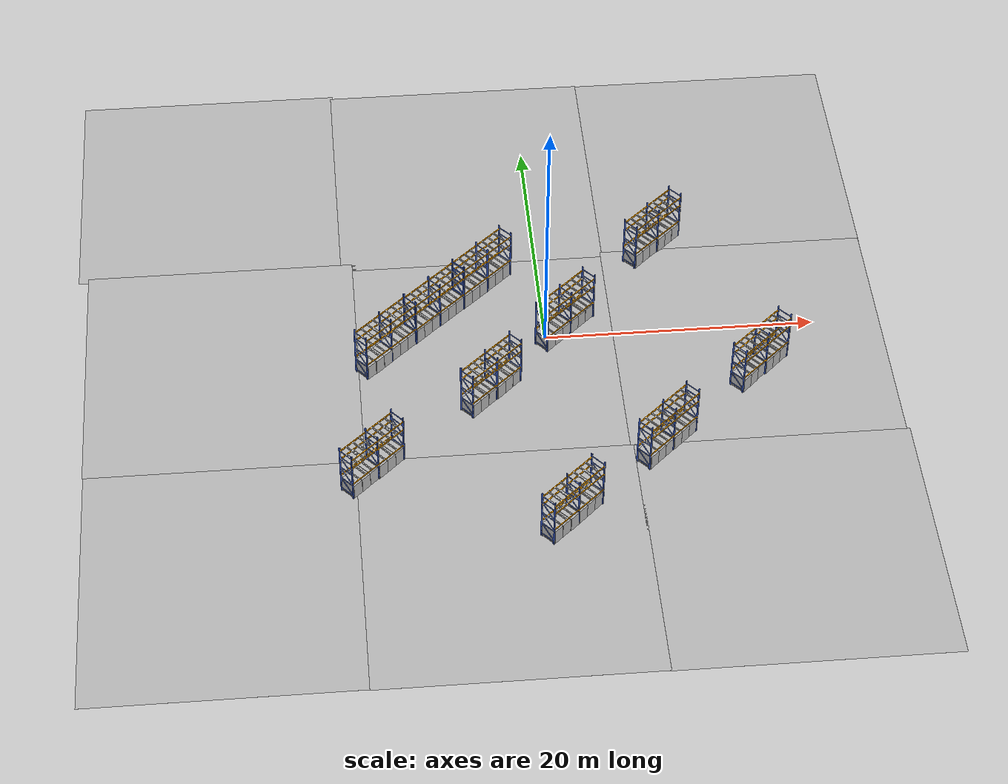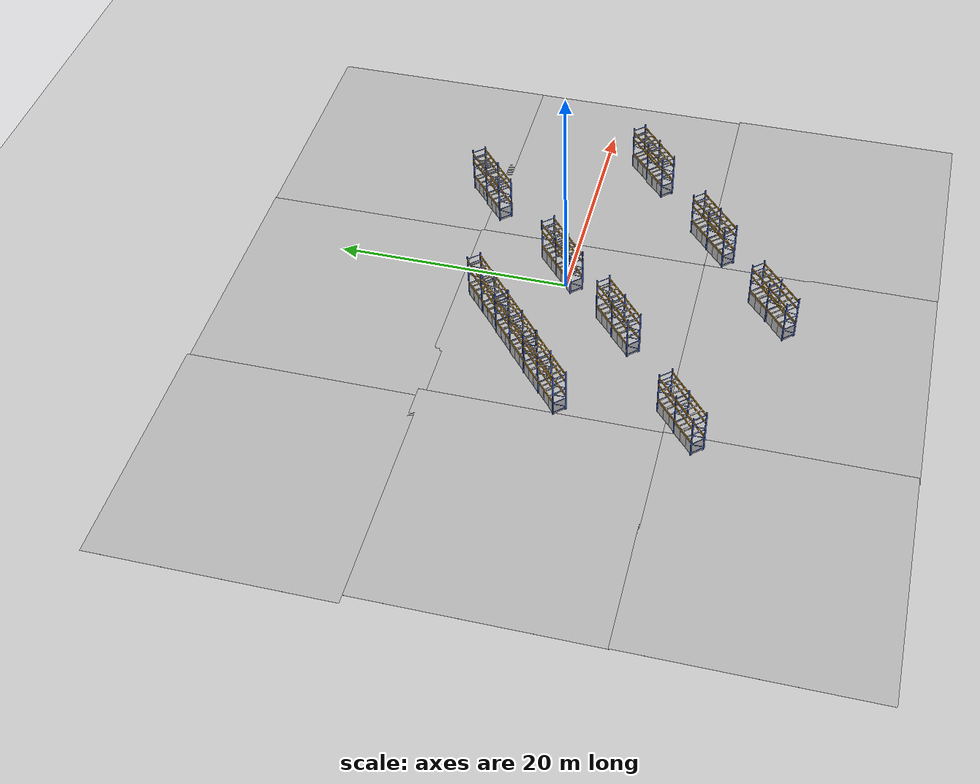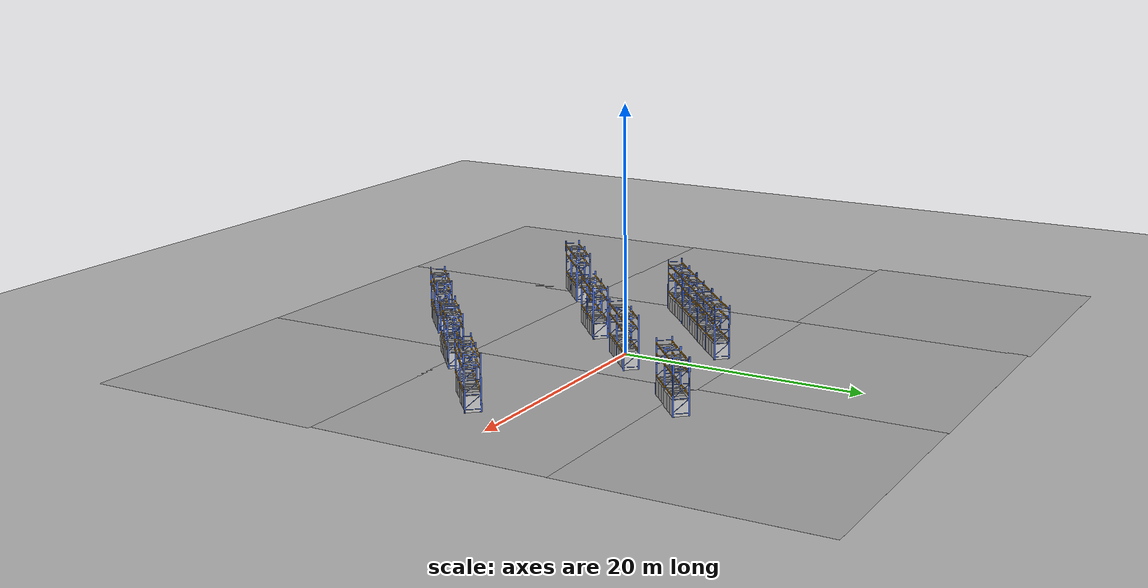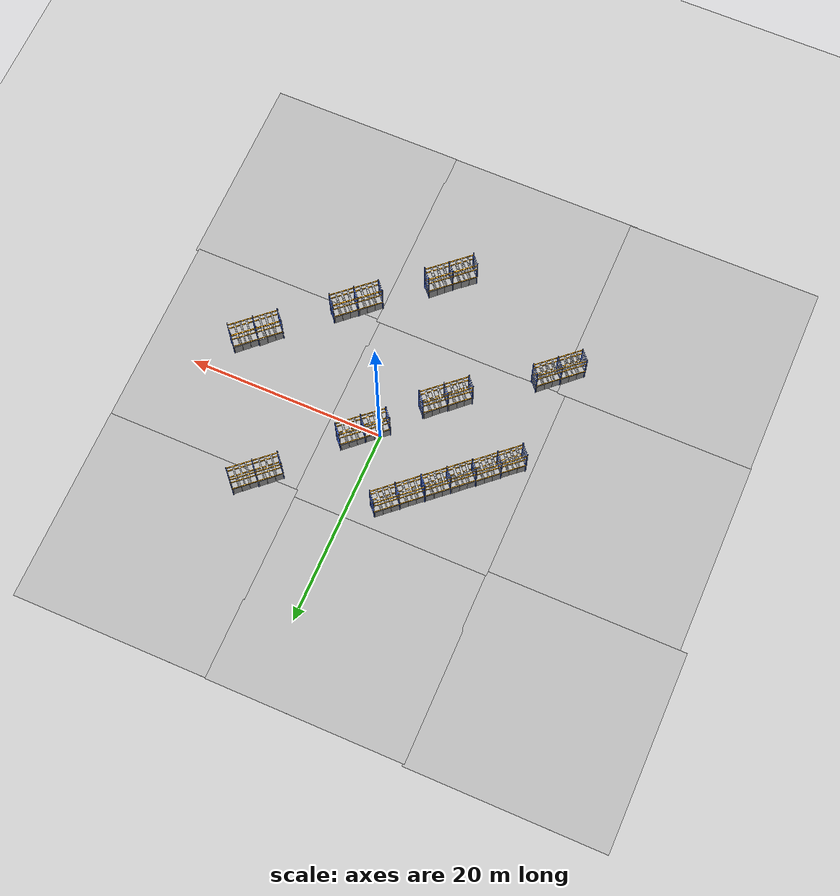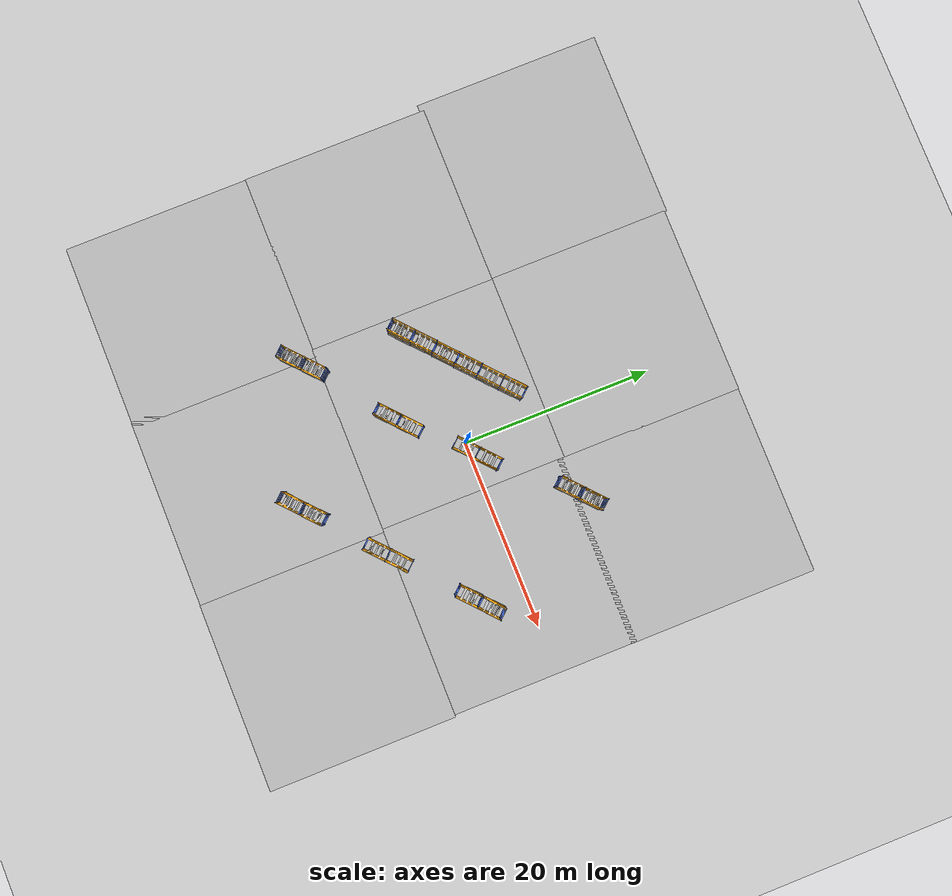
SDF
<sdf version="1.6">
 <world name="default">
  <light name="sun" type="directional">
   <pose>0 0 10 0 -0 0</pose>
   <diffuse>0.8 0.8 0.8 1</diffuse>
   <specular>0.2 0.2 0.2 1</specular>
   <attenuation>
    <range>1000</range>
    <constant>0.9</constant>
    <linear>0.01</linear>
    <quadratic>0.001</quadratic>
   </attenuation>
   <direction>-0.5 0.1 -0.9</direction>
  </light>
  <model name="ground_plane">
   <static>1</static>
   <link name="link">
    <collision name="collision">
     <geometry><plane><normal>0 0 1</normal><size>100 100</size></plane></geometry>
     <surface><friction><ode><mu>100</mu><mu2>50</mu2></ode></friction></surface>
    </collision>
    <visual name="visual">
     <cast_shadows>0</cast_shadows>
     <geometry><plane><normal>0 0 1</normal><size>100 100</size></plane></geometry>
     <material>
      <script><uri>file://media/materials/scripts/gazebo.material</uri><name>Gazebo/Grey</name></script>
     </material>
    </visual>
   </link>
  </model>
  <gravity>0 0 -9.8</gravity>
  <magnetic_field>6e-06 2.3e-05 -4.2e-05</magnetic_field>
  <atmosphere type="adiabatic"/>
  <physics name="default_physics" default="0" type="ode">
   <max_step_size>0.001</max_step_size>
   <real_time_factor>1</real_time_factor>
   <real_time_update_rate>1000</real_time_update_rate>
   <max_contacts>1000</max_contacts>
  </physics>
  <scene><ambient>0.4 0.4 0.4 1</ambient><background>0.7 0.7 0.7 1</background><shadows>1</shadows></scene>
  <spherical_coordinates>
   <surface_model>EARTH_WGS84</surface_model>
   <latitude_deg>0</latitude_deg>
   <longitude_deg>0</longitude_deg>
   <elevation>0</elevation>
   <heading_deg>0</heading_deg>
  </spherical_coordinates>
  <model name="Shelves high">
   <static>1</static>
   <link name="link">
    <collision name="collision">
     <geometry>
      <mesh><uri>model://shelves_high/meshes/shelves_high_collision.dae</uri><scale>1 1.2 1.2</scale></mesh>
     </geometry>
    </collision>
    <visual name="visual">
     <geometry>
      <mesh><uri>model://shelves_high/meshes/shelves_high.dae</uri><scale>1 1.2 1.2</scale></mesh>
     </geometry>
    </visual>
   </link>
   <pose>-4.9 -5 0 0 -0 0.726737</pose>
  </model>
  <model name="Shelves high_clone">
   <static>1</static>
   <link name="link">
    <collision name="collision">
     <geometry>
      <mesh><uri>model://shelves_high/meshes/shelves_high_collision.dae</uri><scale>1 1.2 1.2</scale></mesh>
     </geometry>
    </collision>
    <visual name="visual">
     <geometry>
      <mesh><uri>model://shelves_high/meshes/shelves_high.dae</uri><scale>1 1.2 1.2</scale></mesh>
     </geometry>
    </visual>
   </link>
   <pose>1.08284 1.1362 0 0 -0 0.726737</pose>
  </model>
  <model name="Shelves high_clone_clone">
   <static>1</static>
   <link name="link">
    <collision name="collision">
     <geometry>
      <mesh><uri>model://shelves_high/meshes/shelves_high_collision.dae</uri><scale>1 1.2 1.2</scale></mesh>
     </geometry>
    </collision>
    <visual name="visual">
     <geometry>
      <mesh><uri>model://shelves_high/meshes/shelves_high.dae</uri><scale>1 1.2 1.2</scale></mesh>
     </geometry>
    </visual>
   </link>
   <pose>-4.68105 6.07814 0 0 -0 0.726737</pose>
  </model>
  <model name="Shelves high_clone_clone_0">
   <static>1</static>
   <link name="link">
    <collision name="collision">
     <geometry>
      <mesh><uri>model://shelves_high/meshes/shelves_high_collision.dae</uri><scale>1 1.2 1.2</scale></mesh>
     </geometry>
    </collision>
    <visual name="visual">
     <geometry>
      <mesh><uri>model://shelves_high/meshes/shelves_high.dae</uri><scale>1 1.2 1.2</scale></mesh>
     </geometry>
    </visual>
   </link>
   <pose>-8.4809 2.70667 0 0 -0 0.726737</pose>
  </model>
  <model name="Shelves high_clone_clone_0_clone">
   <static>1</static>
   <link name="link">
    <collision name="collision">
     <geometry>
      <mesh><uri>model://shelves_high/meshes/shelves_high_collision.dae</uri><scale>1 1.2 1.2</scale></mesh>
     </geometry>
    </collision>
    <visual name="visual">
     <geometry>
      <mesh><uri>model://shelves_high/meshes/shelves_high.dae</uri><scale>1 1.2 1.2</scale></mesh>
     </geometry>
    </visual>
   </link>
   <pose>-12.2757 -0.591633 0 0 -0 0.726737</pose>
  </model>
  <model name="Floor_room">
   <link name="main">
    <pose>0 0 0.01 0 -0 0</pose>
    <collision name="main_Collision"><geometry><box><size>20 20 0.001</size></box></geometry></collision>
    <visual name="main_Visual">
     <geometry><box><size>20 20 0.001</size></box></geometry>
     <material>
      <script>
       <uri>model://Floor_room/materials/scripts</uri>
       <uri>model://Floor_room/materials/textures</uri>
       <name>floor_room</name>
      </script>
     </material>
    </visual>
   </link>
   <static>1</static>
   <pose>-4.76301 -1.10114 0 0 -0 0</pose>
  </model>
  <model name="Shelves high_clone_clone_1">
   <static>1</static>
   <link name="link">
    <collision name="collision">
     <geometry>
      <mesh><uri>model://shelves_high/meshes/shelves_high_collision.dae</uri><scale>1 1.2 1.2</scale></mesh>
     </geometry>
    </collision>
    <visual name="visual">
     <geometry>
      <mesh><uri>model://shelves_high/meshes/shelves_high.dae</uri><scale>1 1.2 1.2</scale></mesh>
     </geometry>
    </visual>
   </link>
   <pose>-13.8443 -11.8964 0 0 -0 0.726737</pose>
  </model>
  <model name="Shelves high_clone_clone_2">
   <static>1</static>
   <link name="link">
    <collision name="collision">
     <geometry>
      <mesh><uri>model://shelves_high/meshes/shelves_high_collision.dae</uri><scale>1 1.2 1.2</scale></mesh>
     </geometry>
    </collision>
    <visual name="visual">
     <geometry>
      <mesh><uri>model://shelves_high/meshes/shelves_high.dae</uri><scale>1 1.2 1.2</scale></mesh>
     </geometry>
    </visual>
   </link>
   <pose>8.58263 9.30039 0 0 -0 0.726737</pose>
  </model>
  <model name="Shelves high_clone_clone_2_clone">
   <static>1</static>
   <link name="link">
    <collision name="collision">
     <geometry>
      <mesh><uri>model://shelves_high/meshes/shelves_high_collision.dae</uri><scale>1 1.2 1.2</scale></mesh>
     </geometry>
    </collision>
    <visual name="visual">
     <geometry>
      <mesh><uri>model://shelves_high/meshes/shelves_high.dae</uri><scale>1 1.2 1.2</scale></mesh>
     </geometry>
    </visual>
   </link>
   <pose>7.19061 -10.888 0 0 -0 0.726737</pose>
  </model>
  <model name="Floor_room_0">
   <link name="main">
    <pose>0 0 0.01 0 -0 0</pose>
    <collision name="main_Collision"><geometry><box><size>20 20 0.001</size></box></geometry></collision>
    <visual name="main_Visual">
     <geometry><box><size>20 20 0.001</size></box></geometry>
     <material>
      <script>
       <uri>model://Floor_room/materials/scripts</uri>
       <uri>model://Floor_room/materials/textures</uri>
       <name>floor_room</name>
      </script>
     </material>
    </visual>
   </link>
   <static>1</static>
   <pose>-4.62785 -21.0624 0 0 -0 0</pose>
  </model>
  <model name="Floor_room_0_clone">
   <link name="main">
    <pose>0 0 0.01 0 -0 0</pose>
    <collision name="main_Collision"><geometry><box><size>20 20 0.001</size></box></geometry></collision>
    <visual name="main_Visual">
     <geometry><box><size>20 20 0.001</size></box></geometry>
     <material>
      <script>
       <uri>model://Floor_room/materials/scripts</uri>
       <uri>model://Floor_room/materials/textures</uri>
       <name>floor_room</name>
      </script>
     </material>
    </visual>
   </link>
   <static>1</static>
   <pose>15.2569 -21.1005 0 0 -0 0</pose>
  </model>
  <model name="Floor_room_0_clone_0">
   <link name="main">
    <pose>0 0 0.01 0 -0 0</pose>
    <collision name="main_Collision"><geometry><box><size>20 20 0.001</size></box></geometry></collision>
    <visual name="main_Visual">
     <geometry><box><size>20 20 0.001</size></box></geometry>
     <material>
      <script>
       <uri>model://Floor_room/materials/scripts</uri>
       <uri>model://Floor_room/materials/textures</uri>
       <name>floor_room</name>
      </script>
     </material>
    </visual>
   </link>
   <static>1</static>
   <pose>15.0288 -1.3267 0 0 -0 0</pose>
  </model>
  <model name="Floor_room_0_clone_1">
   <link name="main">
    <pose>0 0 0.01 0 -0 0</pose>
    <collision name="main_Collision"><geometry><box><size>20 20 0.001</size></box></geometry></collision>
    <visual name="main_Visual">
     <geometry><box><size>20 20 0.001</size></box></geometry>
     <material>
      <script>
       <uri>model://Floor_room/materials/scripts</uri>
       <uri>model://Floor_room/materials/textures</uri>
       <name>floor_room</name>
      </script>
     </material>
    </visual>
   </link>
   <static>1</static>
   <pose>15.0504 18.1386 0 0 -0 0</pose>
  </model>
  <model name="Floor_room_0_clone_2">
   <link name="main">
    <pose>0 0 0.01 0 -0 0</pose>
    <collision name="main_Collision"><geometry><box><size>20 20 0.001</size></box></geometry></collision>
    <visual name="main_Visual">
     <geometry><box><size>20 20 0.001</size></box></geometry>
     <material>
      <script>
       <uri>model://Floor_room/materials/scripts</uri>
       <uri>model://Floor_room/materials/textures</uri>
       <name>floor_room</name>
      </script>
     </material>
    </visual>
   </link>
   <static>1</static>
   <pose>-4.83743 18.2019 0 0 -0 0</pose>
  </model>
  <model name="Shelves high_clone_clone_1_clone_clone">
   <static>1</static>
   <link name="link">
    <collision name="collision">
     <geometry>
      <mesh><uri>model://shelves_high/meshes/shelves_high_collision.dae</uri><scale>1 1.2 1.2</scale></mesh>
     </geometry>
    </collision>
    <visual name="visual">
     <geometry>
      <mesh><uri>model://shelves_high/meshes/shelves_high.dae</uri><scale>1 1.2 1.2</scale></mesh>
     </geometry>
    </visual>
   </link>
   <pose>14.8688 -4.07905 0 0 -0 0.726737</pose>
  </model>
  <model name="Floor_room_0_clone_3">
   <link name="main">
    <pose>0 0 0.01 0 -0 0</pose>
    <collision name="main_Collision"><geometry><box><size>20 20 0.001</size></box></geometry></collision>
    <visual name="main_Visual">
     <geometry><box><size>20 20 0.001</size></box></geometry>
     <material>
      <script>
       <uri>model://Floor_room/materials/scripts</uri>
       <uri>model://Floor_room/materials/textures</uri>
       <name>floor_room</name>
      </script>
     </material>
    </visual>
   </link>
   <static>1</static>
   <pose>-23.9194 -21.0125 0 0 -0 0</pose>
  </model>
  <model name="Floor_room_0_clone_4">
   <link name="main">
    <pose>0 0 0.01 0 -0 0</pose>
    <collision name="main_Collision"><geometry><box><size>20 20 0.001</size></box></geometry></collision>
    <visual name="main_Visual">
     <geometry><box><size>20 20 0.001</size></box></geometry>
     <material>
      <script>
       <uri>model://Floor_room/materials/scripts</uri>
       <uri>model://Floor_room/materials/textures</uri>
       <name>floor_room</name>
      </script>
     </material>
    </visual>
   </link>
   <static>1</static>
   <pose>-23.9755 -1.11735 0 0 -0 0</pose>
  </model>
  <model name="Floor_room_0_clone_5">
   <link name="main">
    <pose>0 0 0.01 0 -0 0</pose>
    <collision name="main_Collision"><geometry><box><size>20 20 0.001</size></box></geometry></collision>
    <visual name="main_Visual">
     <geometry><box><size>20 20 0.001</size></box></geometry>
     <material>
      <script>
       <uri>model://Floor_room/materials/scripts</uri>
       <uri>model://Floor_room/materials/textures</uri>
       <name>floor_room</name>
      </script>
     </material>
    </visual>
   </link>
   <static>1</static>
   <pose>-24.6874 18.4261 0 0 -0 0</pose>
  </model>
  <model name="Shelves high_clone_clone_1_clone_clone_0">
   <static>1</static>
   <link name="link">
    <collision name="collision">
     <geometry>
      <mesh><uri>model://shelves_high/meshes/shelves_high_collision.dae</uri><scale>1 1.2 1.2</scale></mesh>
     </geometry>
    </collision>
    <visual name="visual">
     <geometry>
      <mesh><uri>model://shelves_high/meshes/shelves_high.dae</uri><scale>1 1.2 1.2</scale></mesh>
     </geometry>
    </visual>
   </link>
   <pose>-0.243727 -17.1373 0 0 -0 0.726737</pose>
  </model>
  <model name="Big box 4_clone_1_clone_clone_3_clone_clone_1">
   <pose>9.15129 -9.98772 0.63539 -0.000981 -0.000832 -0.826064</pose>
   <static>0</static>
   <link name="link">
    <inertial>
     <mass>40</mass>
     <inertia><ixx>1</ixx><ixy>0</ixy><ixz>0</ixz><iyy>1</iyy><iyz>0</iyz><izz>1</izz></inertia>
    </inertial>
    <collision name="collision">
     <geometry><box><size>1.2 0.8 1.25</size></box></geometry>
     <surface><contact><ode><max_vel>0.1</max_vel><min_depth>0.001</min_depth></ode></contact></surface>
    </collision>
    <visual name="visual">
     <geometry><mesh><uri>model://big_box4/meshes/big_box.dae</uri></mesh></geometry>
    </visual>
   </link>
  </model>
  <model name="Big box 4_clone_1_clone_clone_3_clone_clone_1_clone">
   <pose>7.25854 -11.6862 0.635464 -2.7e-05 -1.5e-05 -0.815496</pose>
   <static>0</static>
   <link name="link">
    <inertial>
     <mass>40</mass>
     <inertia><ixx>1</ixx><ixy>0</ixy><ixz>0</ixz><iyy>1</iyy><iyz>0</iyz><izz>1</izz></inertia>
    </inertial>
    <collision name="collision">
     <geometry><box><size>1.2 0.8 1.25</size></box></geometry>
     <surface><contact><ode><max_vel>0.1</max_vel><min_depth>0.001</min_depth></ode></contact></surface>
    </collision>
    <visual name="visual">
     <geometry><mesh><uri>model://big_box4/meshes/big_box.dae</uri></mesh></geometry>
    </visual>
   </link>
  </model>
  <model name="Big box 4_clone_1_clone_clone_3_clone_clone_1_clone_0">
   <pose>6.67276 -12.2304 0.635223 0.000765 -5.1e-05 -0.815316</pose>
   <static>0</static>
   <link name="link">
    <inertial>
     <mass>40</mass>
     <inertia><ixx>1</ixx><ixy>0</ixy><ixz>0</ixz><iyy>1</iyy><iyz>0</iyz><izz>1</izz></inertia>
    </inertial>
    <collision name="collision">
     <geometry><box><size>1.2 0.8 1.25</size></box></geometry>
     <surface><contact><ode><max_vel>0.1</max_vel><min_depth>0.001</min_depth></ode></contact></surface>
    </collision>
    <visual name="visual">
     <geometry><mesh><uri>model://big_box4/meshes/big_box.dae</uri></mesh></geometry>
    </visual>
   </link>
  </model>
  <model name="Big box 4_clone_1_clone_clone_3_clone_clone_1_clone_0_clone">
   <pose>6.08846 -12.7777 0.63538 -0.00014 -0.000237 -0.815193</pose>
   <static>0</static>
   <link name="link">
    <inertial>
     <mass>40</mass>
     <inertia><ixx>1</ixx><ixy>0</ixy><ixz>0</ixz><iyy>1</iyy><iyz>0</iyz><izz>1</izz></inertia>
    </inertial>
    <collision name="collision">
     <geometry><box><size>1.2 0.8 1.25</size></box></geometry>
     <surface><contact><ode><max_vel>0.1</max_vel><min_depth>0.001</min_depth></ode></contact></surface>
    </collision>
    <visual name="visual">
     <geometry><mesh><uri>model://big_box4/meshes/big_box.dae</uri></mesh></geometry>
    </visual>
   </link>
  </model>
  <model name="Big box 4_clone_1_clone_clone_3_clone_clone_1_clone_0_clone_1">
   <pose>8.56172 -10.531 0.635082 -0.000196 -0.000827 -0.822312</pose>
   <static>0</static>
   <link name="link">
    <inertial>
     <mass>40</mass>
     <inertia><ixx>1</ixx><ixy>0</ixy><ixz>0</ixz><iyy>1</iyy><iyz>0</iyz><izz>1</izz></inertia>
    </inertial>
    <collision name="collision">
     <geometry><box><size>1.2 0.8 1.25</size></box></geometry>
     <surface><contact><ode><max_vel>0.1</max_vel><min_depth>0.001</min_depth></ode></contact></surface>
    </collision>
    <visual name="visual">
     <geometry><mesh><uri>model://big_box4/meshes/big_box.dae</uri></mesh></geometry>
    </visual>
   </link>
  </model>
  <model name="Big box 4_clone_1_clone_clone_3_clone_clone_1_clone_0_clone_0">
   <pose>7.97165 -11.0705 0.635079 -0.000198 -0.000834 -0.823147</pose>
   <static>0</static>
   <link name="link">
    <inertial>
     <mass>40</mass>
     <inertia><ixx>1</ixx><ixy>0</ixy><ixz>0</ixz><iyy>1</iyy><iyz>0</iyz><izz>1</izz></inertia>
    </inertial>
    <collision name="collision">
     <geometry><box><size>1.2 0.8 1.25</size></box></geometry>
     <surface><contact><ode><max_vel>0.1</max_vel><min_depth>0.001</min_depth></ode></contact></surface>
    </collision>
    <visual name="visual">
     <geometry><mesh><uri>model://big_box4/meshes/big_box.dae</uri></mesh></geometry>
    </visual>
   </link>
  </model>
  <model name="Big box 4_clone_1_clone_clone_3_clone_clone_1_clone_0_clone_clone_3_clone_0">
   <pose>-14.9655 -13.7703 0.635484 -0.001251 0.000808 -0.822952</pose>
   <static>0</static>
   <link name="link">
    <inertial>
     <mass>40</mass>
     <inertia><ixx>1</ixx><ixy>0</ixy><ixz>0</ixz><iyy>1</iyy><iyz>0</iyz><izz>1</izz></inertia>
    </inertial>
    <collision name="collision">
     <geometry><box><size>1.2 0.8 1.25</size></box></geometry>
     <surface><contact><ode><max_vel>0.1</max_vel><min_depth>0.001</min_depth></ode></contact></surface>
    </collision>
    <visual name="visual">
     <geometry><mesh><uri>model://big_box4/meshes/big_box.dae</uri></mesh></geometry>
    </visual>
   </link>
  </model>
  <model name="Big box 4_clone_1_clone_clone_3_clone_clone_1_clone_0_clone_clone_3_clone_2">
   <pose>-13.7802 -12.6601 0.634999 -4e-06 -0.00083 -0.815678</pose>
   <static>0</static>
   <link name="link">
    <inertial>
     <mass>40</mass>
     <inertia><ixx>1</ixx><ixy>0</ixy><ixz>0</ixz><iyy>1</iyy><iyz>0</iyz><izz>1</izz></inertia>
    </inertial>
    <collision name="collision">
     <geometry><box><size>1.2 0.8 1.25</size></box></geometry>
     <surface><contact><ode><max_vel>0.1</max_vel><min_depth>0.001</min_depth></ode></contact></surface>
    </collision>
    <visual name="visual">
     <geometry><mesh><uri>model://big_box4/meshes/big_box.dae</uri></mesh></geometry>
    </visual>
   </link>
  </model>
  <model name="Big box 4_clone_1_clone_clone_3_clone_clone_1_clone_0_clone_clone_3_clone_3">
   <pose>-13.0795 -12.0943 0.635015 0.001245 2.9e-05 -0.825603</pose>
   <static>0</static>
   <link name="link">
    <inertial>
     <mass>40</mass>
     <inertia><ixx>1</ixx><ixy>0</ixy><ixz>0</ixz><iyy>1</iyy><iyz>0</iyz><izz>1</izz></inertia>
    </inertial>
    <collision name="collision">
     <geometry><box><size>1.2 0.8 1.25</size></box></geometry>
     <surface><contact><ode><max_vel>0.1</max_vel><min_depth>0.001</min_depth></ode></contact></surface>
    </collision>
    <visual name="visual">
     <geometry><mesh><uri>model://big_box4/meshes/big_box.dae</uri></mesh></geometry>
    </visual>
   </link>
  </model>
  <model name="Big box 4_clone_1_clone_clone_3_clone_clone_1_clone_0_clone_clone_3_clone_5">
   <pose>-12.4895 -11.5448 0.635491 -1.5e-05 1e-06 -0.814935</pose>
   <static>0</static>
   <link name="link">
    <inertial>
     <mass>40</mass>
     <inertia><ixx>1</ixx><ixy>0</ixy><ixz>0</ixz><iyy>1</iyy><iyz>0</iyz><izz>1</izz></inertia>
    </inertial>
    <collision name="collision">
     <geometry><box><size>1.2 0.8 1.25</size></box></geometry>
     <surface><contact><ode><max_vel>0.1</max_vel><min_depth>0.001</min_depth></ode></contact></surface>
    </collision>
    <visual name="visual">
     <geometry><mesh><uri>model://big_box4/meshes/big_box.dae</uri></mesh></geometry>
    </visual>
   </link>
  </model>
  <model name="Big box 4_clone_1_clone_clone_3_clone_clone_1_clone_0_clone_clone_3_clone_4">
   <pose>-11.9042 -10.9927 0.635115 -0.000607 0.00062 -0.815722</pose>
   <static>0</static>
   <link name="link">
    <inertial>
     <mass>40</mass>
     <inertia><ixx>1</ixx><ixy>0</ixy><ixz>0</ixz><iyy>1</iyy><iyz>0</iyz><izz>1</izz></inertia>
    </inertial>
    <collision name="collision">
     <geometry><box><size>1.2 0.8 1.25</size></box></geometry>
     <surface><contact><ode><max_vel>0.1</max_vel><min_depth>0.001</min_depth></ode></contact></surface>
    </collision>
    <visual name="visual">
     <geometry><mesh><uri>model://big_box4/meshes/big_box.dae</uri></mesh></geometry>
    </visual>
   </link>
  </model>
  <model name="Big box 4_clone_1_clone_clone_3_clone_clone_1_clone_0_clone_clone_3_clone_1">
   <pose>-14.3695 -13.2241 0.635492 1.9e-05 -0 -0.815638</pose>
   <static>0</static>
   <link name="link">
    <inertial>
     <mass>40</mass>
     <inertia><ixx>1</ixx><ixy>0</ixy><ixz>0</ixz><iyy>1</iyy><iyz>0</iyz><izz>1</izz></inertia>
    </inertial>
    <collision name="collision">
     <geometry><box><size>1.2 0.8 1.25</size></box></geometry>
     <surface><contact><ode><max_vel>0.1</max_vel><min_depth>0.001</min_depth></ode></contact></surface>
    </collision>
    <visual name="visual">
     <geometry><mesh><uri>model://big_box4/meshes/big_box.dae</uri></mesh></geometry>
    </visual>
   </link>
  </model>
  <model name="Big box 4_clone_1_clone_clone_3_clone_clone_1_clone_0_clone_clone_3_clone_6">
   <pose>0.520862 -17.3367 0.635477 0.000446 0.000301 -0.825937</pose>
   <static>0</static>
   <link name="link">
    <inertial>
     <mass>40</mass>
     <inertia><ixx>1</ixx><ixy>0</ixy><ixz>0</ixz><iyy>1</iyy><iyz>0</iyz><izz>1</izz></inertia>
    </inertial>
    <collision name="collision">
     <geometry><box><size>1.2 0.8 1.25</size></box></geometry>
     <surface><contact><ode><max_vel>0.1</max_vel><min_depth>0.001</min_depth></ode></contact></surface>
    </collision>
    <visual name="visual">
     <geometry><mesh><uri>model://big_box4/meshes/big_box.dae</uri></mesh></geometry>
    </visual>
   </link>
  </model>
  <model name="Big box 4_clone_1_clone_clone_3_clone_clone_1_clone_0_clone_clone_3_clone_8">
   <pose>1.10652 -16.7834 0.634985 7e-06 -0.000805 -0.816273</pose>
   <static>0</static>
   <link name="link">
    <inertial>
     <mass>40</mass>
     <inertia><ixx>1</ixx><ixy>0</ixy><ixz>0</ixz><iyy>1</iyy><iyz>0</iyz><izz>1</izz></inertia>
    </inertial>
    <collision name="collision">
     <geometry><box><size>1.2 0.8 1.25</size></box></geometry>
     <surface><contact><ode><max_vel>0.1</max_vel><min_depth>0.001</min_depth></ode></contact></surface>
    </collision>
    <visual name="visual">
     <geometry><mesh><uri>model://big_box4/meshes/big_box.dae</uri></mesh></geometry>
    </visual>
   </link>
  </model>
  <model name="Big box 4_clone_1_clone_clone_3_clone_clone_1_clone_0_clone_clone_3_clone_7">
   <pose>1.69106 -16.2278 0.634995 1.7e-05 -0.000815 -0.815976</pose>
   <static>0</static>
   <link name="link">
    <inertial>
     <mass>40</mass>
     <inertia><ixx>1</ixx><ixy>0</ixy><ixz>0</ixz><iyy>1</iyy><iyz>0</iyz><izz>1</izz></inertia>
    </inertial>
    <collision name="collision">
     <geometry><box><size>1.2 0.8 1.25</size></box></geometry>
     <surface><contact><ode><max_vel>0.1</max_vel><min_depth>0.001</min_depth></ode></contact></surface>
    </collision>
    <visual name="visual">
     <geometry><mesh><uri>model://big_box4/meshes/big_box.dae</uri></mesh></geometry>
    </visual>
   </link>
  </model>
  <model name="Big box 4_clone_1_clone_clone_3_clone_clone_1_clone_0_clone_clone_3_clone_6_clone">
   <pose>-1.36441 -19.0103 0.635259 -0.000725 -0.000781 -0.820196</pose>
   <static>0</static>
   <link name="link">
    <inertial>
     <mass>40</mass>
     <inertia><ixx>1</ixx><ixy>0</ixy><ixz>0</ixz><iyy>1</iyy><iyz>0</iyz><izz>1</izz></inertia>
    </inertial>
    <collision name="collision">
     <geometry><box><size>1.2 0.8 1.25</size></box></geometry>
     <surface><contact><ode><max_vel>0.1</max_vel><min_depth>0.001</min_depth></ode></contact></surface>
    </collision>
    <visual name="visual">
     <geometry><mesh><uri>model://big_box4/meshes/big_box.dae</uri></mesh></geometry>
    </visual>
   </link>
  </model>
  <model name="Big box 4_clone_1_clone_clone_3_clone_clone_1_clone_0_clone_clone_3_clone_6_clone_0">
   <pose>-0.138119 -17.9496 0.635002 9e-06 -0.000825 -0.823667</pose>
   <static>0</static>
   <link name="link">
    <inertial>
     <mass>40</mass>
     <inertia><ixx>1</ixx><ixy>0</ixy><ixz>0</ixz><iyy>1</iyy><iyz>0</iyz><izz>1</izz></inertia>
    </inertial>
    <collision name="collision">
     <geometry><box><size>1.2 0.8 1.25</size></box></geometry>
     <surface><contact><ode><max_vel>0.1</max_vel><min_depth>0.001</min_depth></ode></contact></surface>
    </collision>
    <visual name="visual">
     <geometry><mesh><uri>model://big_box4/meshes/big_box.dae</uri></mesh></geometry>
    </visual>
   </link>
  </model>
  <model name="Big box 4_clone_1_clone_clone_3_clone_clone_1_clone_0_clone_clone_3_clone_6_clone_1">
   <pose>-0.768553 -18.4756 0.634986 7e-06 -0.000808 -0.821489</pose>
   <static>0</static>
   <link name="link">
    <inertial>
     <mass>40</mass>
     <inertia><ixx>1</ixx><ixy>0</ixy><ixz>0</ixz><iyy>1</iyy><iyz>0</iyz><izz>1</izz></inertia>
    </inertial>
    <collision name="collision">
     <geometry><box><size>1.2 0.8 1.25</size></box></geometry>
     <surface><contact><ode><max_vel>0.1</max_vel><min_depth>0.001</min_depth></ode></contact></surface>
    </collision>
    <visual name="visual">
     <geometry><mesh><uri>model://big_box4/meshes/big_box.dae</uri></mesh></geometry>
    </visual>
   </link>
  </model>
  <model name="big_box3_0_clone_clone_clone_clone_clone_clone_clone">
   <pose>-4.13717 -5.1949 0.635409 -0.001026 -0.000833 -0.806812</pose>
   <static>0</static>
   <link name="link">
    <inertial>
     <mass>40</mass>
     <inertia><ixx>1</ixx><ixy>0</ixy><ixz>0</ixz><iyy>1</iyy><iyz>0</iyz><izz>1</izz></inertia>
    </inertial>
    <collision name="collision">
     <geometry><box><size>1.2 0.8 1.25</size></box></geometry>
     <surface><contact><ode><max_vel>0.1</max_vel><min_depth>0.001</min_depth></ode></contact></surface>
    </collision>
    <visual name="visual">
     <geometry><mesh><uri>model://big_box3/meshes/big_box.dae</uri></mesh></geometry>
    </visual>
   </link>
  </model>
  <model name="big_box3_0_clone_clone_clone_clone_clone_clone_clone_0">
   <pose>-3.55954 -4.64161 0.635163 -0.000435 -0.000816 -0.807648</pose>
   <static>0</static>
   <link name="link">
    <inertial>
     <mass>40</mass>
     <inertia><ixx>1</ixx><ixy>0</ixy><ixz>0</ixz><iyy>1</iyy><iyz>0</iyz><izz>1</izz></inertia>
    </inertial>
    <collision name="collision">
     <geometry><box><size>1.2 0.8 1.25</size></box></geometry>
     <surface><contact><ode><max_vel>0.1</max_vel><min_depth>0.001</min_depth></ode></contact></surface>
    </collision>
    <visual name="visual">
     <geometry><mesh><uri>model://big_box3/meshes/big_box.dae</uri></mesh></geometry>
    </visual>
   </link>
  </model>
  <model name="big_box3_0_clone_clone_clone_clone_clone_clone_clone_clone_0">
   <pose>-6.01856 -6.87089 0.635486 -0.001027 -0.000706 -0.815375</pose>
   <static>0</static>
   <link name="link">
    <inertial>
     <mass>40</mass>
     <inertia><ixx>1</ixx><ixy>0</ixy><ixz>0</ixz><iyy>1</iyy><iyz>0</iyz><izz>1</izz></inertia>
    </inertial>
    <collision name="collision">
     <geometry><box><size>1.2 0.8 1.25</size></box></geometry>
     <surface><contact><ode><max_vel>0.1</max_vel><min_depth>0.001</min_depth></ode></contact></surface>
    </collision>
    <visual name="visual">
     <geometry><mesh><uri>model://big_box3/meshes/big_box.dae</uri></mesh></geometry>
    </visual>
   </link>
  </model>
  <model name="big_box3_0_clone_clone_clone_clone_clone_clone_clone_clone_1">
   <pose>-5.43398 -6.32551 0.635439 -0.001103 -0.000833 -0.816094</pose>
   <static>0</static>
   <link name="link">
    <inertial>
     <mass>40</mass>
     <inertia><ixx>1</ixx><ixy>0</ixy><ixz>0</ixz><iyy>1</iyy><iyz>0</iyz><izz>1</izz></inertia>
    </inertial>
    <collision name="collision">
     <geometry><box><size>1.2 0.8 1.25</size></box></geometry>
     <surface><contact><ode><max_vel>0.1</max_vel><min_depth>0.001</min_depth></ode></contact></surface>
    </collision>
    <visual name="visual">
     <geometry><mesh><uri>model://big_box3/meshes/big_box.dae</uri></mesh></geometry>
    </visual>
   </link>
  </model>
  <model name="big_box3_0_clone_clone_clone_clone_clone_clone_clone_clone">
   <pose>-4.84997 -5.77919 0.635309 -0.000777 -0.000831 -0.816933</pose>
   <static>0</static>
   <link name="link">
    <inertial>
     <mass>40</mass>
     <inertia><ixx>1</ixx><ixy>0</ixy><ixz>0</ixz><iyy>1</iyy><iyz>0</iyz><izz>1</izz></inertia>
    </inertial>
    <collision name="collision">
     <geometry><box><size>1.2 0.8 1.25</size></box></geometry>
     <surface><contact><ode><max_vel>0.1</max_vel><min_depth>0.001</min_depth></ode></contact></surface>
    </collision>
    <visual name="visual">
     <geometry><mesh><uri>model://big_box3/meshes/big_box.dae</uri></mesh></geometry>
    </visual>
   </link>
  </model>
  <model name="big_box3_0_clone_clone_clone_clone_clone_clone_clone_clone_2">
   <pose>-2.97349 -4.08054 0.634999 2.3e-05 -0.000818 -0.807953</pose>
   <static>0</static>
   <link name="link">
    <inertial>
     <mass>40</mass>
     <inertia><ixx>1</ixx><ixy>0</ixy><ixz>0</ixz><iyy>1</iyy><iyz>0</iyz><izz>1</izz></inertia>
    </inertial>
    <collision name="collision">
     <geometry><box><size>1.2 0.8 1.25</size></box></geometry>
     <surface><contact><ode><max_vel>0.1</max_vel><min_depth>0.001</min_depth></ode></contact></surface>
    </collision>
    <visual name="visual">
     <geometry><mesh><uri>model://big_box3/meshes/big_box.dae</uri></mesh></geometry>
    </visual>
   </link>
  </model>
  <model name="Big box 4_clone_1_clone_clone_3_clone_clone_1_clone_0_clone_0_clone">
   <pose>13.7473 -5.95119 0.635493 -9.3e-05 -7.2e-05 -0.819926</pose>
   <static>0</static>
   <link name="link">
    <inertial>
     <mass>40</mass>
     <inertia><ixx>1</ixx><ixy>0</ixy><ixz>0</ixz><iyy>1</iyy><iyz>0</iyz><izz>1</izz></inertia>
    </inertial>
    <collision name="collision">
     <geometry><box><size>1.2 0.8 1.25</size></box></geometry>
     <surface><contact><ode><max_vel>0.1</max_vel><min_depth>0.001</min_depth></ode></contact></surface>
    </collision>
    <visual name="visual">
     <geometry><mesh><uri>model://big_box4/meshes/big_box.dae</uri></mesh></geometry>
    </visual>
   </link>
  </model>
  <model name="Big box 4_clone_1_clone_clone_3_clone_clone_1_clone_0_clone_0_clone_0">
   <pose>14.3278 -5.4008 0.635115 -0.000299 -0.000827 -0.819794</pose>
   <static>0</static>
   <link name="link">
    <inertial>
     <mass>40</mass>
     <inertia><ixx>1</ixx><ixy>0</ixy><ixz>0</ixz><iyy>1</iyy><iyz>0</iyz><izz>1</izz></inertia>
    </inertial>
    <collision name="collision">
     <geometry><box><size>1.2 0.8 1.25</size></box></geometry>
     <surface><contact><ode><max_vel>0.1</max_vel><min_depth>0.001</min_depth></ode></contact></surface>
    </collision>
    <visual name="visual">
     <geometry><mesh><uri>model://big_box4/meshes/big_box.dae</uri></mesh></geometry>
    </visual>
   </link>
  </model>
  <model name="Big box 4_clone_1_clone_clone_3_clone_clone_1_clone_0_clone_0_clone_1">
   <pose>14.9152 -4.7999 0.635003 -2e-06 -0.000829 -0.842655</pose>
   <static>0</static>
   <link name="link">
    <inertial>
     <mass>40</mass>
     <inertia><ixx>1</ixx><ixy>0</ixy><ixz>0</ixz><iyy>1</iyy><iyz>0</iyz><izz>1</izz></inertia>
    </inertial>
    <collision name="collision">
     <geometry><box><size>1.2 0.8 1.25</size></box></geometry>
     <surface><contact><ode><max_vel>0.1</max_vel><min_depth>0.001</min_depth></ode></contact></surface>
    </collision>
    <visual name="visual">
     <geometry><mesh><uri>model://big_box4/meshes/big_box.dae</uri></mesh></geometry>
    </visual>
   </link>
  </model>
  <model name="Big box 4_clone_1_clone_clone_3_clone_clone_1_clone_0_clone_0_clone_2">
   <pose>15.6293 -4.27811 0.635295 0.001115 0.000417 -0.818067</pose>
   <static>0</static>
   <link name="link">
    <inertial>
     <mass>40</mass>
     <inertia><ixx>1</ixx><ixy>0</ixy><ixz>0</ixz><iyy>1</iyy><iyz>0</iyz><izz>1</izz></inertia>
    </inertial>
    <collision name="collision">
     <geometry><box><size>1.2 0.8 1.25</size></box></geometry>
     <surface><contact><ode><max_vel>0.1</max_vel><min_depth>0.001</min_depth></ode></contact></surface>
    </collision>
    <visual name="visual">
     <geometry><mesh><uri>model://big_box4/meshes/big_box.dae</uri></mesh></geometry>
    </visual>
   </link>
  </model>
  <model name="Big box 4_clone_1_clone_clone_3_clone_clone_1_clone_0_clone_0_clone_3">
   <pose>16.8167 -3.15508 0.635 1.8e-05 -0.000821 -0.836899</pose>
   <static>0</static>
   <link name="link">
    <inertial>
     <mass>40</mass>
     <inertia><ixx>1</ixx><ixy>0</ixy><ixz>0</ixz><iyy>1</iyy><iyz>0</iyz><izz>1</izz></inertia>
    </inertial>
    <collision name="collision">
     <geometry><box><size>1.2 0.8 1.25</size></box></geometry>
     <surface><contact><ode><max_vel>0.1</max_vel><min_depth>0.001</min_depth></ode></contact></surface>
    </collision>
    <visual name="visual">
     <geometry><mesh><uri>model://big_box4/meshes/big_box.dae</uri></mesh></geometry>
    </visual>
   </link>
  </model>
  <model name="Big box 4_clone_1_clone_clone_3_clone_clone_1_clone_0_clone_0_clone_4">
   <pose>16.2168 -3.71245 0.63499 1.4e-05 -0.000809 -0.823232</pose>
   <static>0</static>
   <link name="link">
    <inertial>
     <mass>40</mass>
     <inertia><ixx>1</ixx><ixy>0</ixy><ixz>0</ixz><iyy>1</iyy><iyz>0</iyz><izz>1</izz></inertia>
    </inertial>
    <collision name="collision">
     <geometry><box><size>1.2 0.8 1.25</size></box></geometry>
     <surface><contact><ode><max_vel>0.1</max_vel><min_depth>0.001</min_depth></ode></contact></surface>
    </collision>
    <visual name="visual">
     <geometry><mesh><uri>model://big_box4/meshes/big_box.dae</uri></mesh></geometry>
    </visual>
   </link>
  </model>
  <model name="Big box 4_clone_1_clone_clone_3_clone_clone_1_clone_0_clone_0_clone_7">
   <pose>8.6415 8.53133 0.635481 -2.4e-05 1.6e-05 -0.828847</pose>
   <static>0</static>
   <link name="link">
    <inertial>
     <mass>40</mass>
     <inertia><ixx>1</ixx><ixy>0</ixy><ixz>0</ixz><iyy>1</iyy><iyz>0</iyz><izz>1</izz></inertia>
    </inertial>
    <collision name="collision">
     <geometry><box><size>1.2 0.8 1.25</size></box></geometry>
     <surface><contact><ode><max_vel>0.1</max_vel><min_depth>0.001</min_depth></ode></contact></surface>
    </collision>
    <visual name="visual">
     <geometry><mesh><uri>model://big_box4/meshes/big_box.dae</uri></mesh></geometry>
    </visual>
   </link>
  </model>
  <model name="Big box 4_clone_1_clone_clone_3_clone_clone_1_clone_0_clone_0_clone_6">
   <pose>8.04996 7.98879 0.63539 -0.000537 -0.000273 -0.826577</pose>
   <static>0</static>
   <link name="link">
    <inertial>
     <mass>40</mass>
     <inertia><ixx>1</ixx><ixy>0</ixy><ixz>0</ixz><iyy>1</iyy><iyz>0</iyz><izz>1</izz></inertia>
    </inertial>
    <collision name="collision">
     <geometry><box><size>1.2 0.8 1.25</size></box></geometry>
     <surface><contact><ode><max_vel>0.1</max_vel><min_depth>0.001</min_depth></ode></contact></surface>
    </collision>
    <visual name="visual">
     <geometry><mesh><uri>model://big_box4/meshes/big_box.dae</uri></mesh></geometry>
    </visual>
   </link>
  </model>
  <model name="Big box 4_clone_1_clone_clone_3_clone_clone_1_clone_0_clone_0_clone_5">
   <pose>7.46301 7.43366 0.63519 0.000256 -0.000525 -0.812529</pose>
   <static>0</static>
   <link name="link">
    <inertial>
     <mass>40</mass>
     <inertia><ixx>1</ixx><ixy>0</ixy><ixz>0</ixz><iyy>1</iyy><iyz>0</iyz><izz>1</izz></inertia>
    </inertial>
    <collision name="collision">
     <geometry><box><size>1.2 0.8 1.25</size></box></geometry>
     <surface><contact><ode><max_vel>0.1</max_vel><min_depth>0.001</min_depth></ode></contact></surface>
    </collision>
    <visual name="visual">
     <geometry><mesh><uri>model://big_box4/meshes/big_box.dae</uri></mesh></geometry>
    </visual>
   </link>
  </model>
  <model name="Big box 4_clone_1_clone_clone_3_clone_clone_1_clone_0_clone_0_clone_8">
   <pose>9.36837 9.0957 0.635155 -0.000387 -0.000835 -0.823047</pose>
   <static>0</static>
   <link name="link">
    <inertial>
     <mass>40</mass>
     <inertia><ixx>1</ixx><ixy>0</ixy><ixz>0</ixz><iyy>1</iyy><iyz>0</iyz><izz>1</izz></inertia>
    </inertial>
    <collision name="collision">
     <geometry><box><size>1.2 0.8 1.25</size></box></geometry>
     <surface><contact><ode><max_vel>0.1</max_vel><min_depth>0.001</min_depth></ode></contact></surface>
    </collision>
    <visual name="visual">
     <geometry><mesh><uri>model://big_box4/meshes/big_box.dae</uri></mesh></geometry>
    </visual>
   </link>
  </model>
  <model name="Big box 4_clone_1_clone_clone_3_clone_clone_1_clone_0_clone_0_clone_9">
   <pose>9.95031 9.64417 0.635341 -0.000865 -0.000827 -0.823145</pose>
   <static>0</static>
   <link name="link">
    <inertial>
     <mass>40</mass>
     <inertia><ixx>1</ixx><ixy>0</ixy><ixz>0</ixz><iyy>1</iyy><iyz>0</iyz><izz>1</izz></inertia>
    </inertial>
    <collision name="collision">
     <geometry><box><size>1.2 0.8 1.25</size></box></geometry>
     <surface><contact><ode><max_vel>0.1</max_vel><min_depth>0.001</min_depth></ode></contact></surface>
    </collision>
    <visual name="visual">
     <geometry><mesh><uri>model://big_box4/meshes/big_box.dae</uri></mesh></geometry>
    </visual>
   </link>
  </model>
  <model name="Big box 4_clone_1_clone_clone_3_clone_clone_1_clone_0_clone_0_clone_10">
   <pose>10.5486 10.1813 0.634985 4e-06 -0.000801 -0.823209</pose>
   <static>0</static>
   <link name="link">
    <inertial>
     <mass>40</mass>
     <inertia><ixx>1</ixx><ixy>0</ixy><ixz>0</ixz><iyy>1</iyy><iyz>0</iyz><izz>1</izz></inertia>
    </inertial>
    <collision name="collision">
     <geometry><box><size>1.2 0.8 1.25</size></box></geometry>
     <surface><contact><ode><max_vel>0.1</max_vel><min_depth>0.001</min_depth></ode></contact></surface>
    </collision>
    <visual name="visual">
     <geometry><mesh><uri>model://big_box4/meshes/big_box.dae</uri></mesh></geometry>
    </visual>
   </link>
  </model>
  <model name="Big box 4_clone_1_clone_clone_3_clone_clone_1_clone_0_clone_0_clone_11">
   <pose>-0.046229 -0.711085 0.635459 -0.001173 -0.000818 -0.838585</pose>
   <static>0</static>
   <link name="link">
    <inertial>
     <mass>40</mass>
     <inertia><ixx>1</ixx><ixy>0</ixy><ixz>0</ixz><iyy>1</iyy><iyz>0</iyz><izz>1</izz></inertia>
    </inertial>
    <collision name="collision">
     <geometry><box><size>1.2 0.8 1.25</size></box></geometry>
     <surface><contact><ode><max_vel>0.1</max_vel><min_depth>0.001</min_depth></ode></contact></surface>
    </collision>
    <visual name="visual">
     <geometry><mesh><uri>model://big_box4/meshes/big_box.dae</uri></mesh></geometry>
    </visual>
   </link>
  </model>
  <model name="Big box 4_clone_1_clone_clone_3_clone_clone_1_clone_0_clone_0_clone_12">
   <pose>0.544133 -0.171349 0.635324 -0.000817 -0.000832 -0.838007</pose>
   <static>0</static>
   <link name="link">
    <inertial>
     <mass>40</mass>
     <inertia><ixx>1</ixx><ixy>0</ixy><ixz>0</ixz><iyy>1</iyy><iyz>0</iyz><izz>1</izz></inertia>
    </inertial>
    <collision name="collision">
     <geometry><box><size>1.2 0.8 1.25</size></box></geometry>
     <surface><contact><ode><max_vel>0.1</max_vel><min_depth>0.001</min_depth></ode></contact></surface>
    </collision>
    <visual name="visual">
     <geometry><mesh><uri>model://big_box4/meshes/big_box.dae</uri></mesh></geometry>
    </visual>
   </link>
  </model>
  <model name="Big box 4_clone_1_clone_clone_3_clone_clone_1_clone_0_clone_0_clone_13">
   <pose>1.14786 0.362104 0.63528 -0.000744 -0.000806 -0.82704</pose>
   <static>0</static>
   <link name="link">
    <inertial>
     <mass>40</mass>
     <inertia><ixx>1</ixx><ixy>0</ixy><ixz>0</ixz><iyy>1</iyy><iyz>0</iyz><izz>1</izz></inertia>
    </inertial>
    <collision name="collision">
     <geometry><box><size>1.2 0.8 1.25</size></box></geometry>
     <surface><contact><ode><max_vel>0.1</max_vel><min_depth>0.001</min_depth></ode></contact></surface>
    </collision>
    <visual name="visual">
     <geometry><mesh><uri>model://big_box4/meshes/big_box.dae</uri></mesh></geometry>
    </visual>
   </link>
  </model>
  <model name="Big box 4_clone_1_clone_clone_3_clone_clone_1_clone_0_clone_0_clone_14">
   <pose>1.82362 0.972434 0.635461 -0.000772 -0.000562 -0.835831</pose>
   <static>0</static>
   <link name="link">
    <inertial>
     <mass>40</mass>
     <inertia><ixx>1</ixx><ixy>0</ixy><ixz>0</ixz><iyy>1</iyy><iyz>0</iyz><izz>1</izz></inertia>
    </inertial>
    <collision name="collision">
     <geometry><box><size>1.2 0.8 1.25</size></box></geometry>
     <surface><contact><ode><max_vel>0.1</max_vel><min_depth>0.001</min_depth></ode></contact></surface>
    </collision>
    <visual name="visual">
     <geometry><mesh><uri>model://big_box4/meshes/big_box.dae</uri></mesh></geometry>
    </visual>
   </link>
  </model>
  <model name="Big box 4_clone_1_clone_clone_3_clone_clone_1_clone_0_clone_0_clone_15">
   <pose>2.408 1.51849 0.635132 -0.000381 -0.0008 -0.836237</pose>
   <static>0</static>
   <link name="link">
    <inertial>
     <mass>40</mass>
     <inertia><ixx>1</ixx><ixy>0</ixy><ixz>0</ixz><iyy>1</iyy><iyz>0</iyz><izz>1</izz></inertia>
    </inertial>
    <collision name="collision">
     <geometry><box><size>1.2 0.8 1.25</size></box></geometry>
     <surface><contact><ode><max_vel>0.1</max_vel><min_depth>0.001</min_depth></ode></contact></surface>
    </collision>
    <visual name="visual">
     <geometry><mesh><uri>model://big_box4/meshes/big_box.dae</uri></mesh></geometry>
    </visual>
   </link>
  </model>
  <model name="Big box 4_clone_1_clone_clone_3_clone_clone_1_clone_0_clone_0_clone_16">
   <pose>3.00408 2.06545 0.634985 6e-06 -0.000805 -0.823197</pose>
   <static>0</static>
   <link name="link">
    <inertial>
     <mass>40</mass>
     <inertia><ixx>1</ixx><ixy>0</ixy><ixz>0</ixz><iyy>1</iyy><iyz>0</iyz><izz>1</izz></inertia>
    </inertial>
    <collision name="collision">
     <geometry><box><size>1.2 0.8 1.25</size></box></geometry>
     <surface><contact><ode><max_vel>0.1</max_vel><min_depth>0.001</min_depth></ode></contact></surface>
    </collision>
    <visual name="visual">
     <geometry><mesh><uri>model://big_box4/meshes/big_box.dae</uri></mesh></geometry>
    </visual>
   </link>
  </model>
  <model name="Big box 4_clone_1_clone_clone_3_clone_clone_1_clone_0_clone_0_clone_17">
   <pose>-7.73658 2.53548 0.635002 -1.9e-05 -0.000825 -0.838988</pose>
   <static>0</static>
   <link name="link">
    <inertial>
     <mass>40</mass>
     <inertia><ixx>1</ixx><ixy>0</ixy><ixz>0</ixz><iyy>1</iyy><iyz>0</iyz><izz>1</izz></inertia>
    </inertial>
    <collision name="collision">
     <geometry><box><size>1.2 0.8 1.25</size></box></geometry>
     <surface><contact><ode><max_vel>0.1</max_vel><min_depth>0.001</min_depth></ode></contact></surface>
    </collision>
    <visual name="visual">
     <geometry><mesh><uri>model://big_box4/meshes/big_box.dae</uri></mesh></geometry>
    </visual>
   </link>
  </model>
  <model name="Big box 4_clone_1_clone_clone_3_clone_clone_1_clone_0_clone_0_clone_17_clone">
   <pose>-7.13852 3.06749 0.634991 1.5e-05 -0.000811 -0.839532</pose>
   <static>0</static>
   <link name="link">
    <inertial>
     <mass>40</mass>
     <inertia><ixx>1</ixx><ixy>0</ixy><ixz>0</ixz><iyy>1</iyy><iyz>0</iyz><izz>1</izz></inertia>
    </inertial>
    <collision name="collision">
     <geometry><box><size>1.2 0.8 1.25</size></box></geometry>
     <surface><contact><ode><max_vel>0.1</max_vel><min_depth>0.001</min_depth></ode></contact></surface>
    </collision>
    <visual name="visual">
     <geometry><mesh><uri>model://big_box4/meshes/big_box.dae</uri></mesh></geometry>
    </visual>
   </link>
  </model>
  <model name="Big box 4_clone_1_clone_clone_3_clone_clone_1_clone_0_clone_0_clone_17_clone_0">
   <pose>-6.52886 3.61701 0.634985 7e-06 -0.000806 -0.839529</pose>
   <static>0</static>
   <link name="link">
    <inertial>
     <mass>40</mass>
     <inertia><ixx>1</ixx><ixy>0</ixy><ixz>0</ixz><iyy>1</iyy><iyz>0</iyz><izz>1</izz></inertia>
    </inertial>
    <collision name="collision">
     <geometry><box><size>1.2 0.8 1.25</size></box></geometry>
     <surface><contact><ode><max_vel>0.1</max_vel><min_depth>0.001</min_depth></ode></contact></surface>
    </collision>
    <visual name="visual">
     <geometry><mesh><uri>model://big_box4/meshes/big_box.dae</uri></mesh></geometry>
    </visual>
   </link>
  </model>
  <model name="Big box 4_clone_1_clone_clone_3_clone_clone_1_clone_0_clone_0_clone_17_clone_1">
   <pose>-5.80502 4.22074 0.635152 -0.000397 -0.000823 -0.842643</pose>
   <static>0</static>
   <link name="link">
    <inertial>
     <mass>40</mass>
     <inertia><ixx>1</ixx><ixy>0</ixy><ixz>0</ixz><iyy>1</iyy><iyz>0</iyz><izz>1</izz></inertia>
    </inertial>
    <collision name="collision">
     <geometry><box><size>1.2 0.8 1.25</size></box></geometry>
     <surface><contact><ode><max_vel>0.1</max_vel><min_depth>0.001</min_depth></ode></contact></surface>
    </collision>
    <visual name="visual">
     <geometry><mesh><uri>model://big_box4/meshes/big_box.dae</uri></mesh></geometry>
    </visual>
   </link>
  </model>
  <model name="Big box 4_clone_1_clone_clone_3_clone_clone_1_clone_0_clone_0_clone_17_clone_2">
   <pose>-5.205 4.74932 0.635322 -0.00081 -0.000832 -0.842847</pose>
   <static>0</static>
   <link name="link">
    <inertial>
     <mass>40</mass>
     <inertia><ixx>1</ixx><ixy>0</ixy><ixz>0</ixz><iyy>1</iyy><iyz>0</iyz><izz>1</izz></inertia>
    </inertial>
    <collision name="collision">
     <geometry><box><size>1.2 0.8 1.25</size></box></geometry>
     <surface><contact><ode><max_vel>0.1</max_vel><min_depth>0.001</min_depth></ode></contact></surface>
    </collision>
    <visual name="visual">
     <geometry><mesh><uri>model://big_box4/meshes/big_box.dae</uri></mesh></geometry>
    </visual>
   </link>
  </model>
  <model name="Big box 4_clone_1_clone_clone_3_clone_clone_1_clone_0_clone_0_clone_17_clone_3">
   <pose>-4.6037 5.29396 0.635 1.9e-05 -0.00082 -0.83952</pose>
   <static>0</static>
   <link name="link">
    <inertial>
     <mass>40</mass>
     <inertia><ixx>1</ixx><ixy>0</ixy><ixz>0</ixz><iyy>1</iyy><iyz>0</iyz><izz>1</izz></inertia>
    </inertial>
    <collision name="collision">
     <geometry><box><size>1.2 0.8 1.25</size></box></geometry>
     <surface><contact><ode><max_vel>0.1</max_vel><min_depth>0.001</min_depth></ode></contact></surface>
    </collision>
    <visual name="visual">
     <geometry><mesh><uri>model://big_box4/meshes/big_box.dae</uri></mesh></geometry>
    </visual>
   </link>
  </model>
  <model name="Big box 4_clone_1_clone_clone_3_clone_clone_1_clone_0_clone_0_clone_17_clone_4">
   <pose>-3.93897 5.9055 0.635079 -0.000332 -0.000744 -0.843604</pose>
   <static>0</static>
   <link name="link">
    <inertial>
     <mass>40</mass>
     <inertia><ixx>1</ixx><ixy>0</ixy><ixz>0</ixz><iyy>1</iyy><iyz>0</iyz><izz>1</izz></inertia>
    </inertial>
    <collision name="collision">
     <geometry><box><size>1.2 0.8 1.25</size></box></geometry>
     <surface><contact><ode><max_vel>0.1</max_vel><min_depth>0.001</min_depth></ode></contact></surface>
    </collision>
    <visual name="visual">
     <geometry><mesh><uri>model://big_box4/meshes/big_box.dae</uri></mesh></geometry>
    </visual>
   </link>
  </model>
  <model name="Big box 4_clone_1_clone_clone_3_clone_clone_1_clone_0_clone_0_clone_17_clone_5">
   <pose>-3.33894 6.44046 0.63499 1.3e-05 -0.00081 -0.839514</pose>
   <static>0</static>
   <link name="link">
    <inertial>
     <mass>40</mass>
     <inertia><ixx>1</ixx><ixy>0</ixy><ixz>0</ixz><iyy>1</iyy><iyz>0</iyz><izz>1</izz></inertia>
    </inertial>
    <collision name="collision">
     <geometry><box><size>1.2 0.8 1.25</size></box></geometry>
     <surface><contact><ode><max_vel>0.1</max_vel><min_depth>0.001</min_depth></ode></contact></surface>
    </collision>
    <visual name="visual">
     <geometry><mesh><uri>model://big_box4/meshes/big_box.dae</uri></mesh></geometry>
    </visual>
   </link>
  </model>
  <model name="Big box 4_clone_1_clone_clone_3_clone_clone_1_clone_0_clone_0_clone_17_clone_6">
   <pose>-2.75141 6.9897 0.635003 -1e-06 -0.000829 -0.83951</pose>
   <static>0</static>
   <link name="link">
    <inertial>
     <mass>40</mass>
     <inertia><ixx>1</ixx><ixy>0</ixy><ixz>0</ixz><iyy>1</iyy><iyz>0</iyz><izz>1</izz></inertia>
    </inertial>
    <collision name="collision">
     <geometry><box><size>1.2 0.8 1.25</size></box></geometry>
     <surface><contact><ode><max_vel>0.1</max_vel><min_depth>0.001</min_depth></ode></contact></surface>
    </collision>
    <visual name="visual">
     <geometry><mesh><uri>model://big_box4/meshes/big_box.dae</uri></mesh></geometry>
    </visual>
   </link>
  </model>
  <model name="Big box 4_clone_1_clone_clone_3_clone_clone_1_clone_0_clone_0_clone_17_clone_7">
   <pose>-11.5235 -0.774689 0.635399 -0.00059 -0.000473 -0.84277</pose>
   <static>0</static>
   <link name="link">
    <inertial>
     <mass>40</mass>
     <inertia><ixx>1</ixx><ixy>0</ixy><ixz>0</ixz><iyy>1</iyy><iyz>0</iyz><izz>1</izz></inertia>
    </inertial>
    <collision name="collision">
     <geometry><box><size>1.2 0.8 1.25</size></box></geometry>
     <surface><contact><ode><max_vel>0.1</max_vel><min_depth>0.001</min_depth></ode></contact></surface>
    </collision>
    <visual name="visual">
     <geometry><mesh><uri>model://big_box4/meshes/big_box.dae</uri></mesh></geometry>
    </visual>
   </link>
  </model>
  <model name="Big box 4_clone_1_clone_clone_3_clone_clone_1_clone_0_clone_0_clone_17_clone_8">
   <pose>-10.9227 -0.247104 0.635231 -0.000581 -0.000833 -0.843607</pose>
   <static>0</static>
   <link name="link">
    <inertial>
     <mass>40</mass>
     <inertia><ixx>1</ixx><ixy>0</ixy><ixz>0</ixz><iyy>1</iyy><iyz>0</iyz><izz>1</izz></inertia>
    </inertial>
    <collision name="collision">
     <geometry><box><size>1.2 0.8 1.25</size></box></geometry>
     <surface><contact><ode><max_vel>0.1</max_vel><min_depth>0.001</min_depth></ode></contact></surface>
    </collision>
    <visual name="visual">
     <geometry><mesh><uri>model://big_box4/meshes/big_box.dae</uri></mesh></geometry>
    </visual>
   </link>
  </model>
  <model name="Big box 4_clone_1_clone_clone_3_clone_clone_1_clone_0_clone_0_clone_17_clone_9">
   <pose>-10.3347 0.295118 0.635349 -0.000883 -0.000828 -0.843712</pose>
   <static>0</static>
   <link name="link">
    <inertial>
     <mass>40</mass>
     <inertia><ixx>1</ixx><ixy>0</ixy><ixz>0</ixz><iyy>1</iyy><iyz>0</iyz><izz>1</izz></inertia>
    </inertial>
    <collision name="collision">
     <geometry><box><size>1.2 0.8 1.25</size></box></geometry>
     <surface><contact><ode><max_vel>0.1</max_vel><min_depth>0.001</min_depth></ode></contact></surface>
    </collision>
    <visual name="visual">
     <geometry><mesh><uri>model://big_box4/meshes/big_box.dae</uri></mesh></geometry>
    </visual>
   </link>
  </model>
  <model name="Big box 4_clone_1_clone_clone_3_clone_clone_1_clone_0_clone_0_clone_17_clone_10">
   <pose>-9.62684 0.875332 0.635273 0.000272 -0.000552 -0.845763</pose>
   <static>0</static>
   <link name="link">
    <inertial>
     <mass>40</mass>
     <inertia><ixx>1</ixx><ixy>0</ixy><ixz>0</ixz><iyy>1</iyy><iyz>0</iyz><izz>1</izz></inertia>
    </inertial>
    <collision name="collision">
     <geometry><box><size>1.2 0.8 1.25</size></box></geometry>
     <surface><contact><ode><max_vel>0.1</max_vel><min_depth>0.001</min_depth></ode></contact></surface>
    </collision>
    <visual name="visual">
     <geometry><mesh><uri>model://big_box4/meshes/big_box.dae</uri></mesh></geometry>
    </visual>
   </link>
  </model>
  <model name="Big box 4_clone_1_clone_clone_3_clone_clone_1_clone_0_clone_0_clone_17_clone_11">
   <pose>-9.03115 1.40865 0.635183 -0.000464 -0.00083 -0.845764</pose>
   <static>0</static>
   <link name="link">
    <inertial>
     <mass>40</mass>
     <inertia><ixx>1</ixx><ixy>0</ixy><ixz>0</ixz><iyy>1</iyy><iyz>0</iyz><izz>1</izz></inertia>
    </inertial>
    <collision name="collision">
     <geometry><box><size>1.2 0.8 1.25</size></box></geometry>
     <surface><contact><ode><max_vel>0.1</max_vel><min_depth>0.001</min_depth></ode></contact></surface>
    </collision>
    <visual name="visual">
     <geometry><mesh><uri>model://big_box4/meshes/big_box.dae</uri></mesh></geometry>
    </visual>
   </link>
  </model>
  <model name="Big box 4_clone_1_clone_clone_3_clone_clone_1_clone_0_clone_0_clone_17_clone_12">
   <pose>-8.44268 1.9582 0.635002 8e-06 -0.000826 -0.839492</pose>
   <static>0</static>
   <link name="link">
    <inertial>
     <mass>40</mass>
     <inertia><ixx>1</ixx><ixy>0</ixy><ixz>0</ixz><iyy>1</iyy><iyz>0</iyz><izz>1</izz></inertia>
    </inertial>
    <collision name="collision">
     <geometry><box><size>1.2 0.8 1.25</size></box></geometry>
     <surface><contact><ode><max_vel>0.1</max_vel><min_depth>0.001</min_depth></ode></contact></surface>
    </collision>
    <visual name="visual">
     <geometry><mesh><uri>model://big_box4/meshes/big_box.dae</uri></mesh></geometry>
    </visual>
   </link>
  </model>
  <model name="Big box 4_clone_1_clone_clone_3_clone_clone_1_clone_0_clone_0_clone_17_clone_13">
   <pose>-13.3883 -2.45981 0.63509 7e-06 -0.000678 -0.843713</pose>
   <static>0</static>
   <link name="link">
    <inertial>
     <mass>40</mass>
     <inertia><ixx>1</ixx><ixy>0</ixy><ixz>0</ixz><iyy>1</iyy><iyz>0</iyz><izz>1</izz></inertia>
    </inertial>
    <collision name="collision">
     <geometry><box><size>1.2 0.8 1.25</size></box></geometry>
     <surface><contact><ode><max_vel>0.1</max_vel><min_depth>0.001</min_depth></ode></contact></surface>
    </collision>
    <visual name="visual">
     <geometry><mesh><uri>model://big_box4/meshes/big_box.dae</uri></mesh></geometry>
    </visual>
   </link>
  </model>
  <model name="Big box 4_clone_1_clone_clone_3_clone_clone_1_clone_0_clone_0_clone_17_clone_15">
   <pose>-12.1594 -1.38782 0.634991 1.4e-05 -0.000811 -0.839484</pose>
   <static>0</static>
   <link name="link">
    <inertial>
     <mass>40</mass>
     <inertia><ixx>1</ixx><ixy>0</ixy><ixz>0</ixz><iyy>1</iyy><iyz>0</iyz><izz>1</izz></inertia>
    </inertial>
    <collision name="collision">
     <geometry><box><size>1.2 0.8 1.25</size></box></geometry>
     <surface><contact><ode><max_vel>0.1</max_vel><min_depth>0.001</min_depth></ode></contact></surface>
    </collision>
    <visual name="visual">
     <geometry><mesh><uri>model://big_box4/meshes/big_box.dae</uri></mesh></geometry>
    </visual>
   </link>
  </model>
  <model name="Big box 4_clone_1_clone_clone_3_clone_clone_1_clone_0_clone_0_clone_17_clone_14">
   <pose>-12.762 -1.93984 0.634985 3e-06 -0.000801 -0.839477</pose>
   <static>0</static>
   <link name="link">
    <inertial>
     <mass>40</mass>
     <inertia><ixx>1</ixx><ixy>0</ixy><ixz>0</ixz><iyy>1</iyy><iyz>0</iyz><izz>1</izz></inertia>
    </inertial>
    <collision name="collision">
     <geometry><box><size>1.2 0.8 1.25</size></box></geometry>
     <surface><contact><ode><max_vel>0.1</max_vel><min_depth>0.001</min_depth></ode></contact></surface>
    </collision>
    <visual name="visual">
     <geometry><mesh><uri>model://big_box4/meshes/big_box.dae</uri></mesh></geometry>
    </visual>
   </link>
  </model>
 </world>
</sdf>
